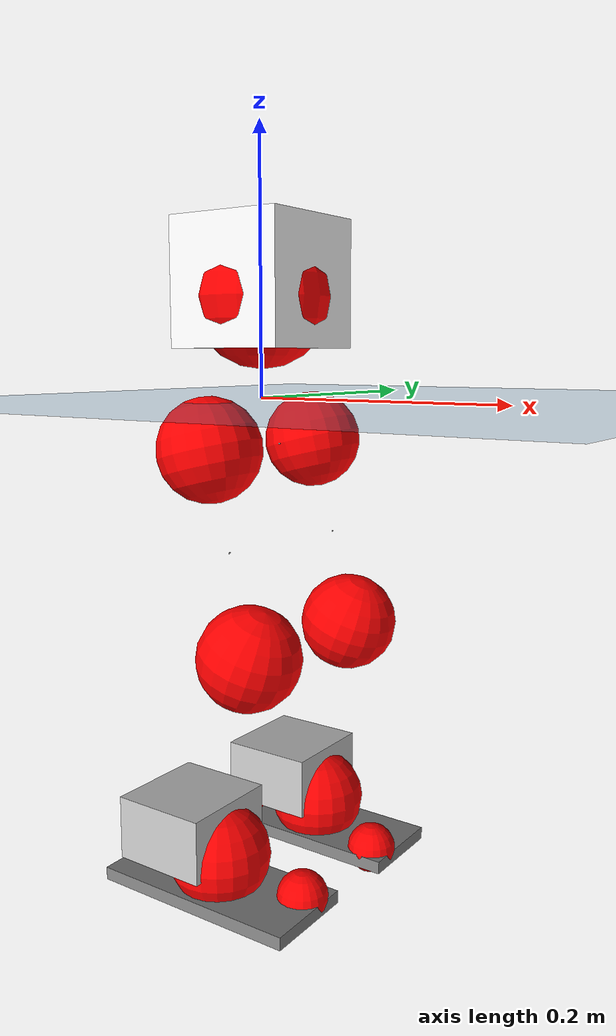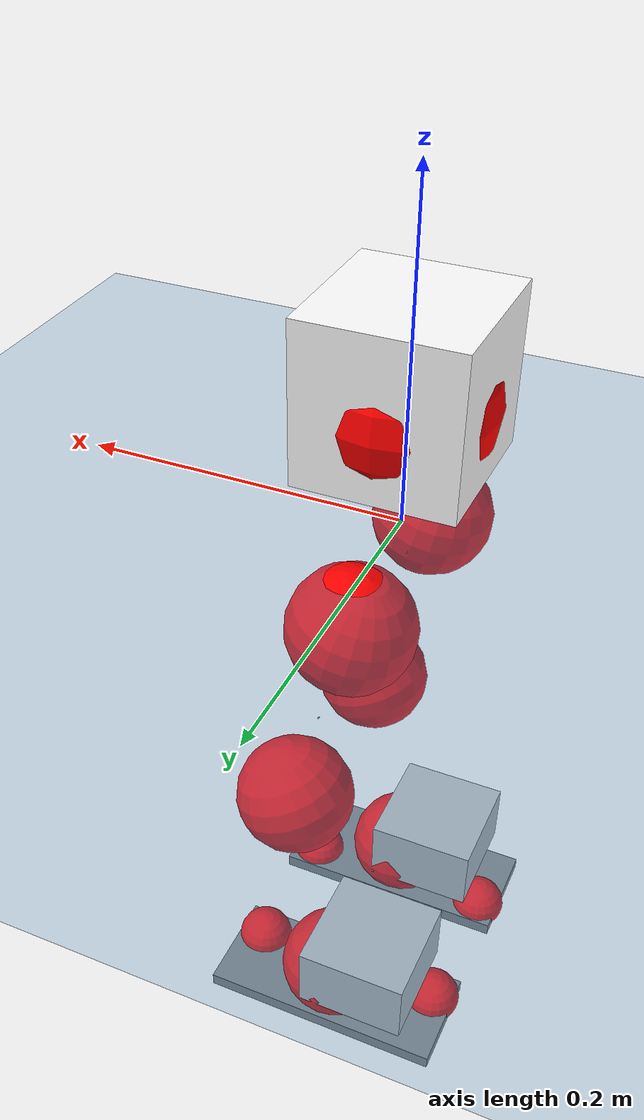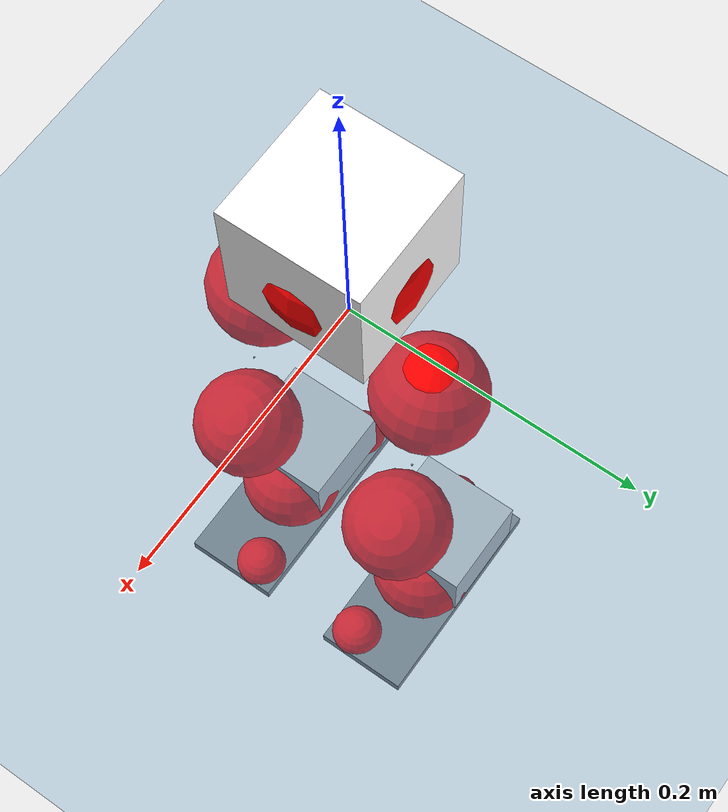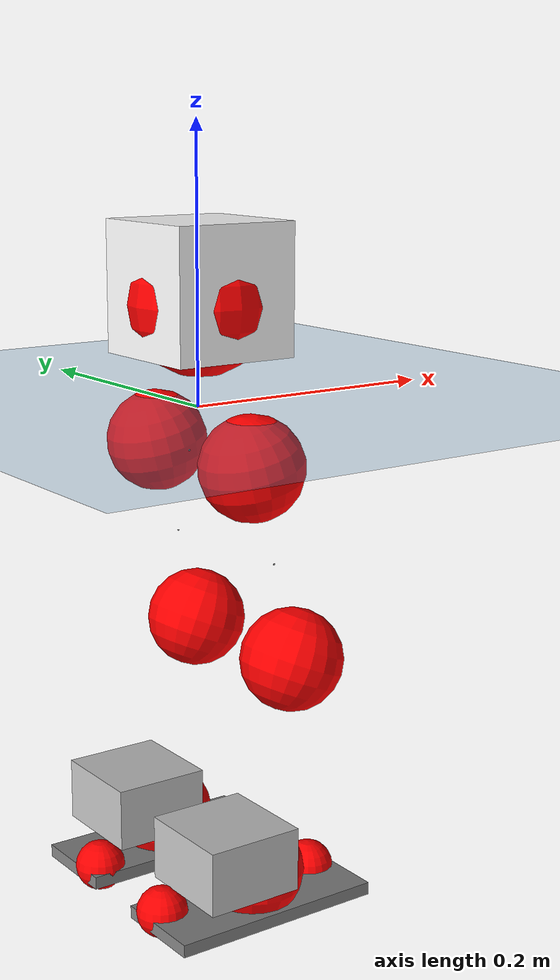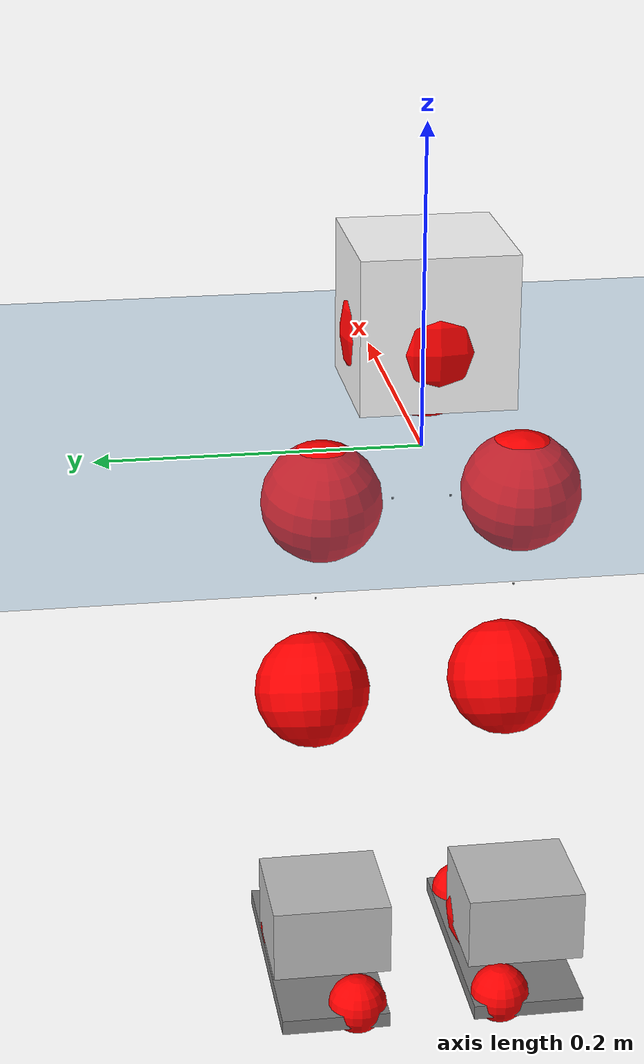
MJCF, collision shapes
<mujoco model="pi_12dof_release_v1">
  <compiler angle="radian" assetdir="assets" balanceinertia="true" inertiafromgeom="false"/>

  <option timestep="0.005" density="1.2" viscosity="2e-05"/>

  <size nkey="1"/>

  <visual>
    <quality shadowsize="8192"/>
    <map shadowclip="0.5"/>
  </visual>

  <default>
    <default class="/">
      <joint armature="0.01" damping="0.01" frictionloss="0.01"/>
      <geom contype="0" conaffinity="0" group="1" solref="-1000 -80"/>
      <site size="0.01 0.005 0.005" group="5"/>
      <general forcelimited="true" biastype="affine" gainprm="20" biasprm="0 -20 -0.5"/>
      <default class="foot">
        <geom size="0.0845 0.036 0.005" type="box" condim="6" group="4" priority="1" friction="0.9 0.2 0.2" solimp="0.015 1 0.005"/>
      </default>
      <default class="reward_collision_sphere">
        <geom group="5" rgba="1 0 0 1"/>
      </default>
    </default>
  </default>

  <asset>
    <texture type="skybox" colorspace="auto" name="//unnamed_texture_0" builtin="gradient" rgb1="0.95 0.95 0.95" rgb2="0.95 0.95 0.95" width="100" height="600"/>
    <texture type="2d" colorspace="auto" name="texplane" builtin="checker" rgb1="0.345 0.575 0.748" rgb2="0.345 0.575 0.748" markrgb="1 1 1" width="512" height="512"/>
    <material name="MatPlane" class="/" texture="texplane" texuniform="true" texrepeat="2 2" specular="0.9"/>
    <mesh name="baselink_1" class="/" file="baselink_1.STL"/>
    <mesh name="r_hip_pitch_link" class="/" file="r_hip_pitch_link.STL"/>
    <mesh name="r_hip_roll_link" class="/" file="r_hip_roll_link.STL"/>
    <mesh name="r_thigh_link" class="/" file="r_thigh_link.STL"/>
    <mesh name="r_calf_link" class="/" file="r_calf_link.STL"/>
    <mesh name="r_ankle_pitch_link" class="/" file="r_ankle_pitch_link.STL"/>
    <mesh name="r_ankle_roll_link" class="/" file="r_ankle_roll_link.STL"/>
    <mesh name="l_hip_pitch_link" class="/" file="l_hip_pitch_link.STL"/>
    <mesh name="l_hip_roll_link" class="/" file="l_hip_roll_link.STL"/>
    <mesh name="l_thigh_link" class="/" file="l_thigh_link.STL"/>
    <mesh name="l_calf_link" class="/" file="l_calf_link.STL"/>
    <mesh name="l_ankle_pitch_link" class="/" file="l_ankle_pitch_link.STL"/>
    <mesh name="l_ankle_roll_link" class="/" file="l_ankle_roll_link.STL"/>
  </asset>

  <worldbody>
    <geom name="floor" class="/" size="100 100 0.125" type="plane" group="0" material="MatPlane"/>
    <light name="toplight_shadow" class="/" pos="0 0 5" dir="0.0990148 0.0990148 -0.990148" type="directional" ambient="0.04 0.04 0.04" diffuse="0.55 0.55 0.55" specular="0.12 0.12 0.12"/>
    <light name="toplight_fill" class="/" pos="0 0 5" dir="0.0990148 0.0990148 -0.990148" type="directional" castshadow="false" ambient="0.04 0.04 0.04" diffuse="0.3 0.3 0.3" specular="0.08 0.08 0.08"/>
    <body name="trunk" pos="0.00158216 -0.00102489 -0.000369642" quat="1 0.0001019 2.4494e-05 0.000165301">
      <inertial pos="0.00224105 7.92054e-05 0.0424665" quat="0.697637 0.00957041 0.0104699 0.716311" mass="1.79531" diaginertia="0.00879832 0.00304932 0.0054513"/>
      <joint name="//unnamed_joint_0" type="free"/>
      <geom name="//unnamed_geom_1" class="/" type="mesh" density="0" rgba="1 1 1 1" mesh="baselink_1"/>
      <geom name="//unnamed_geom_2" class="/" size="0.0471726 0.0471726 0.0471726" pos="0 0 0.0843619" type="box" rgba="1 1 1 1"/>
      <geom name="//unnamed_geom_3" class="reward_collision_sphere" size="0.0518899" pos="0 0 0.0738167"/>
      <site name="imu" class="/" pos="-0.00315356 -0.0023363 -0.010424" size="0.00943452"/>
      <camera name="track" class="/" pos="0 -1.60682 0" quat="0.707107 0.707107 0 0" mode="trackcom"/>
      <camera name="ego_camera" class="/" pos="0.0729316 0 0.189814" quat="-0.5 -0.5 0.5 0.5"/>
      <body name="r_hip_pitch_link" pos="0.000787282 -0.0179722 -0.0341094" quat="0.992214 0.000103449 -0.124546 0.000795296">
        <inertial pos="-0.000791035 -0.0443769 0.000132249" quat="-0.0181899 0.705955 -0.0283869 0.707453" mass="0.311948" diaginertia="9.46695e-05 3.27229e-05 0.000107803"/>
        <joint name="r_hip_pitch_joint" class="/" pos="0 0 0" axis="-0.00965608 -0.999938 -0.00557495" stiffness="0.000178028" range="-1.71001 1.24979" armature="0.00946985" damping="0.0225821" frictionloss="0.0094875"/>
        <geom name="//unnamed_geom_4" class="/" type="mesh" density="0" rgba="0.75294 0.75294 0.75294 1" mesh="r_hip_pitch_link"/>
        <geom name="//unnamed_geom_5" class="/" size="0.000471726 0.000471726 0.000471726" type="box" rgba="0.75294 0.75294 0.75294 1"/>
        <body name="r_hip_roll_link" pos="4.47196e-05 -0.0442929 0.000711501" quat="1 -0.000176651 0.000250824 -0.000221667">
          <inertial pos="-0.00139288 -0.000116465 -0.0671029" quat="0.704718 -0.0823954 -0.0855041 0.69948" mass="0.330426" diaginertia="0.000293023 9.41187e-05 0.000170067"/>
          <joint name="r_hip_roll_joint" class="/" pos="0 0 0" axis="-0.999986 -0.00486356 -0.00211885" range="-0.111804 0.524558" armature="0.00903564" damping="0.00886138" frictionloss="0.00924055"/>
          <geom name="//unnamed_geom_6" class="/" type="mesh" density="0" rgba="0.75294 0.75294 0.75294 1" mesh="r_hip_roll_link"/>
          <geom name="//unnamed_geom_7" class="/" size="0.000471726 0.000471726 0.000471726" type="box" rgba="0.75294 0.75294 0.75294 1"/>
          <geom name="//unnamed_geom_8" class="reward_collision_sphere" size="0.0377381"/>
          <body name="r_thigh_link" pos="2.9245e-05 -0.00153799 -0.0731693" quat="1 -8.54898e-05 0.000136133 -0.000160691">
            <inertial pos="-0.000477841 0.00175741 -0.0501217" quat="0.737772 0.674983 -0.00143376 -0.00934773" mass="0.0938651" diaginertia="0.000107323 3.16254e-05 7.40654e-05"/>
            <joint name="r_thigh_joint" class="/" pos="0 0 0" axis="0.000255213 -0.00103543 -0.999999" range="-0.294296 0.633981" armature="0.00948257" damping="0.00506536" frictionloss="0.0098748"/>
            <geom name="//unnamed_geom_9" class="/" type="mesh" density="0" rgba="0.75294 0.75294 0.75294 1" mesh="r_thigh_link"/>
            <geom name="//unnamed_geom_10" class="/" size="0.000471726 0.000471726 0.000471726" type="box" rgba="0.75294 0.75294 0.75294 1"/>
            <body name="r_calf_link" pos="-0.0021984 0.000347226 -0.0751109" quat="0.947723 -8.08223e-05 0.319093 2.53935e-05">
              <inertial pos="0.00167774 -0.00165246 -0.0755914" quat="0.999976 -0.00372264 -0.000314334 0.00591178" mass="0.704208" diaginertia="0.00313016 0.0012009 0.000233244"/>
              <joint name="r_calf_joint" class="/" pos="0 0 0" axis="-0.00710398 -0.999951 -0.00688904" range="-1.66116 0.648979" armature="0.0090917" damping="0.00964299" frictionloss="0.00929789"/>
              <geom name="//unnamed_geom_11" class="/" type="mesh" density="0" rgba="0.75294 0.75294 0.75294 1" mesh="r_calf_link"/>
              <geom name="//unnamed_geom_12" class="/" size="0.000471726 0.000471726 0.000471726" type="box" rgba="0.75294 0.75294 0.75294 1"/>
              <geom name="//unnamed_geom_13" class="reward_collision_sphere" size="0.0377381"/>
              <body name="r_ankle_pitch_link" pos="0.000778304 0.00136642 -0.147778" quat="0.980074 -2.65242e-05 -0.198634 5.63469e-06">
                <inertial pos="0.00543224 0.00531637 -0.000646736" quat="0.00249881 0.707457 -0.00190457 0.70675" mass="0.146135" diaginertia="0.000265716 7.36732e-05 0.00015458"/>
                <joint name="r_ankle_pitch_joint" class="/" pos="0 0 0" axis="0.000745756 -0.999999 -0.00105554" range="-1.31922 0.502703" armature="0.00890299" damping="0.00456707" frictionloss="0.00927205"/>
                <geom name="//unnamed_geom_14" class="/" type="mesh" density="0" rgba="0.75294 0.75294 0.75294 1" mesh="r_ankle_pitch_link"/>
                <geom name="//unnamed_geom_15" class="/" size="0.0367946 0.0377381 0.0235863" type="box" rgba="0.75294 0.75294 0.75294 1"/>
                <body name="r_ankle_roll_link" pos="0.0736079 0.00213061 0.00158855" quat="0.999999 -0.000137619 -0.000974751 0.000574971">
                  <inertial pos="-0.0209226 0.00031811 -0.0142581" quat="0.560378 0.430518 0.434399 0.558506" mass="0.427034" diaginertia="0.000969875 0.000349359 0.000377688"/>
                  <joint name="r_ankle_roll_joint" class="/" pos="0 0 0" axis="-0.999949 -0.00151608 0.00994963" range="-0.147152 0.143033" armature="0.00918858" damping="0.016663" frictionloss="0.00927306"/>
                  <geom name="//unnamed_geom_16" class="/" type="mesh" density="0" rgba="0.75294 0.75294 0.75294 1" mesh="r_ankle_roll_link"/>
                  <geom name="//unnamed_geom_17" class="/" type="mesh" rgba="0.75294 0.75294 0.75294 1" mesh="r_ankle_roll_link"/>
                  <geom name="right_foot" class="foot" size="0.081881 0.0355355 0.00474515" pos="-0.0495935 0 -0.046399"/>
                  <geom name="//unnamed_geom_19" class="reward_collision_sphere" size="0.0377381" pos="-0.0486211 0 -0.0210905"/>
                  <geom name="//unnamed_geom_20" class="reward_collision_sphere" size="0.018869" pos="0.0145863 0.0160682 -0.0421809"/>
                  <geom name="//unnamed_geom_21" class="reward_collision_sphere" size="0.018869" pos="-0.116691 0.0160682 -0.0421809"/>
                  <site name="right_foot" class="foot" pos="-0.0495935 0 -0.046399" size="0.00943452"/>
                </body>
              </body>
            </body>
          </body>
        </body>
      </body>
      <body name="l_hip_pitch_link" pos="0.00209978 0.0179914 -0.0346877" quat="0.992193 -5.48658e-06 -0.124712 -6.644e-06">
        <inertial pos="0.00278247 0.0408705 -0.000229426" quat="-0.0391214 0.708052 0.0355493 0.704179" mass="0.330078" diaginertia="0.000112155 3.50494e-05 0.000128894"/>
        <joint name="l_hip_pitch_joint" class="/" pos="0 0 0" axis="0.00136326 0.999945 -0.0104107" range="-1.28319 1.75975" armature="0.00844688" damping="0.0105443" frictionloss="0.00902916"/>
        <geom name="//unnamed_geom_22" class="/" type="mesh" density="0" rgba="0.75294 0.75294 0.75294 1" mesh="l_hip_pitch_link"/>
        <geom name="//unnamed_geom_23" class="/" size="0.000471726 0.000471726 0.000471726" type="box" rgba="0.75294 0.75294 0.75294 1"/>
        <body name="l_hip_roll_link" pos="0.000228809 0.0442743 0.000520662" quat="1 -0.000312694 2.64064e-05 0.000466407">
          <inertial pos="-0.00230371 0.00208302 -0.064537" quat="0.700446 -0.071948 -0.0770775 0.705874" mass="0.327309" diaginertia="0.000290798 9.36611e-05 0.0001636"/>
          <joint name="l_hip_roll_joint" class="/" pos="0 0 0" axis="-0.999985 -0.00544968 0.00110204" range="-0.509997 0.0969473" armature="0.00997987" damping="0.00262719" frictionloss="0.00966681"/>
          <geom name="//unnamed_geom_24" class="/" type="mesh" density="0" rgba="0.75294 0.75294 0.75294 1" mesh="l_hip_roll_link"/>
          <geom name="//unnamed_geom_25" class="/" size="0.000471726 0.000471726 0.000471726" type="box" rgba="0.75294 0.75294 0.75294 1"/>
          <geom name="//unnamed_geom_26" class="reward_collision_sphere" size="0.0377381"/>
          <body name="l_thigh_link" pos="0.000143974 0.000896455 -0.0754297" quat="0.999999 -7.46757e-05 -0.000504008 -0.000958495">
            <inertial pos="0.000697375 -0.0015897 -0.04788" quat="0.674845 0.737953 -0.000170753 -0.00311624" mass="0.092656" diaginertia="0.000109141 3.20866e-05 7.5304e-05"/>
            <joint name="l_thigh_joint" class="/" pos="0 0 0" axis="0.000999038 0.00450251 -0.999989" range="-0.640979 0.286887" armature="0.00948415" damping="0" frictionloss="0.00968266"/>
            <geom name="//unnamed_geom_27" class="/" type="mesh" density="0" rgba="0.75294 0.75294 0.75294 1" mesh="l_thigh_link"/>
            <geom name="//unnamed_geom_28" class="/" size="0.000471726 0.000471726 0.000471726" type="box" rgba="0.75294 0.75294 0.75294 1"/>
            <body name="l_calf_link" pos="-0.00253395 -0.00013229 -0.0734494" quat="0.947483 1.52693e-05 0.319805 -1.79763e-06">
              <inertial pos="0.000559027 0.00157029 -0.0736678" quat="0.999932 0.00785858 0.00844588 0.00196615" mass="0.683173" diaginertia="0.00303799 0.00116885 0.000226609"/>
              <joint name="l_calf_joint" class="/" pos="0 0 0" axis="0.0072915 0.999955 -0.00603034" stiffness="0.00185631" range="-0.645104 1.63259" armature="0.00956887" damping="0.0100306" frictionloss="0.00887861"/>
              <geom name="//unnamed_geom_29" class="/" type="mesh" density="0" rgba="0.75294 0.75294 0.75294 1" mesh="l_calf_link"/>
              <geom name="//unnamed_geom_30" class="/" size="0.000471726 0.000471726 0.000471726" type="box" rgba="0.75294 0.75294 0.75294 1"/>
              <geom name="//unnamed_geom_31" class="reward_collision_sphere" size="0.0377381"/>
              <body name="l_ankle_pitch_link" pos="0.00049987 0.000567966 -0.146216" quat="0.980155 7.83973e-05 -0.198231 -1.12736e-05">
                <inertial pos="0.00382325 -0.00119165 -0.000594668" quat="-0.0112856 0.702441 -0.000704282 0.711652" mass="0.14807" diaginertia="0.000266917 7.50717e-05 0.000160321"/>
                <joint name="l_ankle_pitch_joint" class="/" pos="0 0 0" axis="-0.00555563 0.999984 -0.000371001" range="-0.506984 1.30236" armature="0.00978588" damping="0" frictionloss="0.00945757"/>
                <geom name="//unnamed_geom_32" class="/" type="mesh" density="0" rgba="0.75294 0.75294 0.75294 1" mesh="l_ankle_pitch_link"/>
                <geom name="//unnamed_geom_33" class="/" size="0.0367946 0.0377381 0.0235863" type="box" rgba="0.75294 0.75294 0.75294 1"/>
                <body name="l_ankle_roll_link" pos="0.0740924 0.000581303 -0.000106941" quat="1 -0.000111046 -5.4104e-05 -0.000114002">
                  <inertial pos="-0.025722 -0.00265321 -0.0133529" quat="0.56047 0.430892 0.433165 0.559082" mass="0.439322" diaginertia="0.000976737 0.000348766 0.000367232"/>
                  <joint name="l_ankle_roll_joint" class="/" pos="0 0 0" axis="-0.999994 -0.000666957 -0.003303" stiffness="0.00256548" range="-0.157818 0.156575" armature="0.00964879" damping="0.0165929" frictionloss="0.0101367"/>
                  <geom name="//unnamed_geom_34" class="/" type="mesh" density="0" rgba="0.75294 0.75294 0.75294 1" mesh="l_ankle_roll_link"/>
                  <geom name="//unnamed_geom_35" class="/" type="mesh" rgba="0.75294 0.75294 0.75294 1" mesh="l_ankle_roll_link"/>
                  <geom name="left_foot" class="foot" size="0.082128 0.0345166 0.00483415" pos="-0.0495935 0 -0.046399"/>
                  <geom name="//unnamed_geom_37" class="reward_collision_sphere" size="0.0377381" pos="-0.0486211 0 -0.0210905"/>
                  <geom name="//unnamed_geom_38" class="reward_collision_sphere" size="0.018869" pos="0.0145863 -0.0160682 -0.0421809"/>
                  <geom name="//unnamed_geom_39" class="reward_collision_sphere" size="0.018869" pos="-0.116691 -0.0160682 -0.0421809"/>
                  <site name="left_foot" class="foot" pos="-0.0495935 0 -0.046399" size="0.00943452"/>
                </body>
              </body>
            </body>
          </body>
        </body>
      </body>
    </body>
  </worldbody>

  <contact>
    <pair class="/" geom1="floor" geom2="right_foot" name="//unnamed_contact_1"/>
    <pair class="/" geom1="floor" geom2="left_foot" name="//unnamed_contact_0"/>
  </contact>

  <actuator>
    <general name="r_hip_pitch_joint" class="/" joint="r_hip_pitch_joint" forcerange="-19.0995 19.0995" gainprm="19.1807" biasprm="0 -19.1807 -0.464477"/>
    <general name="r_hip_roll_joint" class="/" joint="r_hip_roll_joint" forcerange="-21.1314 21.1314" gainprm="19.1807" biasprm="0 -19.1807 -0.464477"/>
    <general name="r_thigh_joint" class="/" joint="r_thigh_joint" forcerange="-20.5982 20.5982" gainprm="19.1807" biasprm="0 -19.1807 -0.464477"/>
    <general name="r_calf_joint" class="/" joint="r_calf_joint" forcerange="-21.3738 21.3738" gainprm="19.1807" biasprm="0 -19.1807 -0.464477"/>
    <general name="r_ankle_pitch_joint" class="/" joint="r_ankle_pitch_joint" forcerange="-20.226 20.226" gainprm="19.1807" biasprm="0 -19.1807 -0.464477"/>
    <general name="r_ankle_roll_joint" class="/" joint="r_ankle_roll_joint" forcerange="-19.2307 19.2307" gainprm="19.1807" biasprm="0 -19.1807 -0.464477"/>
    <general name="l_hip_pitch_joint" class="/" joint="l_hip_pitch_joint" forcerange="-19.8799 19.8799" gainprm="19.1807" biasprm="0 -19.1807 -0.464477"/>
    <general name="l_hip_roll_joint" class="/" joint="l_hip_roll_joint" forcerange="-18.9539 18.9539" gainprm="19.1807" biasprm="0 -19.1807 -0.464477"/>
    <general name="l_thigh_joint" class="/" joint="l_thigh_joint" forcerange="-19.0563 19.0563" gainprm="19.1807" biasprm="0 -19.1807 -0.464477"/>
    <general name="l_calf_joint" class="/" joint="l_calf_joint" forcerange="-19.8249 19.8249" gainprm="19.1807" biasprm="0 -19.1807 -0.464477"/>
    <general name="l_ankle_pitch_joint" class="/" joint="l_ankle_pitch_joint" forcerange="-20.1914 20.1914" gainprm="19.1807" biasprm="0 -19.1807 -0.464477"/>
    <general name="l_ankle_roll_joint" class="/" joint="l_ankle_roll_joint" forcerange="-19.4945 19.4945" gainprm="19.1807" biasprm="0 -19.1807 -0.464477"/>
  </actuator>

  <sensor>
    <gyro site="imu" name="imu_angular_velocity"/>
    <velocimeter site="imu" name="imu_linear_velocity"/>
    <framelinvel objtype="site" objname="left_foot" name="left_foot_global_linear_velocity"/>
    <framelinvel objtype="site" objname="right_foot" name="right_foot_global_linear_velocity"/>
  </sensor>

  <keyframe>
    <key name="home" qpos="0 0 0.291 1 0 0 0 0.4 0 0 -0.8 0.4 0 -0.4 0 0 0.8 -0.4 0"/>
  </keyframe>
</mujoco>
